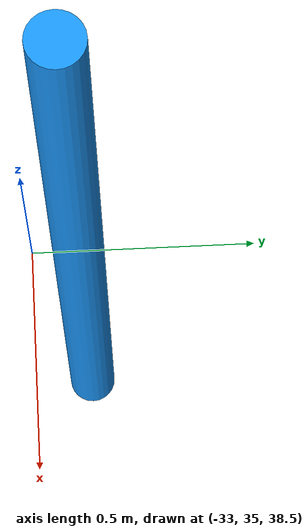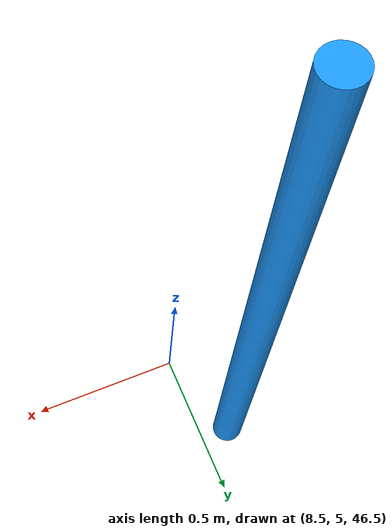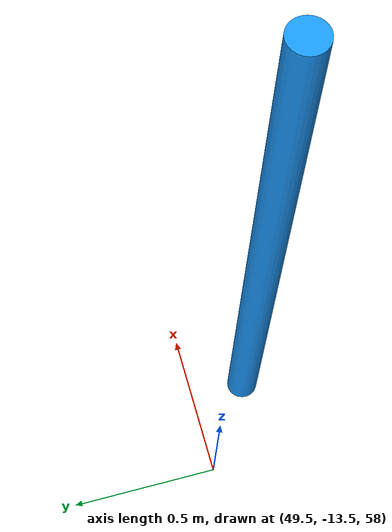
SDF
<sdf version="1.9">
 <world name="jezero_rimwest_rocks_k05_full">
  <physics name="1ms" type="ignored">
   <max_step_size>0.001</max_step_size>
   <real_time_factor>1</real_time_factor>
  </physics>
  <gravity>0 0 -3.721</gravity>
  <plugin filename="gz-sim-physics-system" name="gz::sim::systems::Physics"/>
  <plugin filename="gz-sim-user-commands-system" name="gz::sim::systems::UserCommands"/>
  <plugin filename="gz-sim-scene-broadcaster-system" name="gz::sim::systems::SceneBroadcaster"/>
  <scene><ambient>0.5 0.4 0.35 1</ambient><background>0.85 0.65 0.50 1</background><grid>false</grid></scene>
  <light type="directional" name="sun">
   <pose>0 0 100 0 0 0</pose>
   <diffuse>0.9 0.85 0.8 1</diffuse>
   <direction>-0.5 0.3 -0.8</direction>
  </light>
  <model name="waypoint_sol1431">
   <static>true</static>
   <pose>49.73 -13.66 59.17 0 0 0</pose>
   <link name="link">
    <visual name="v">
     <geometry><cylinder><radius>0.05</radius><length>2.0</length></cylinder></geometry>
     <material><ambient>0.1 0.6 1 1</ambient><diffuse>0.1 0.6 1 1</diffuse></material>
    </visual>
   </link>
  </model>
  <model name="waypoint_sol1435">
   <static>true</static>
   <pose>8.4 5.3 47.49 0 0 0</pose>
   <link name="link">
    <visual name="v">
     <geometry><cylinder><radius>0.05</radius><length>2.0</length></cylinder></geometry>
     <material><ambient>0.1 0.6 1 1</ambient><diffuse>0.1 0.6 1 1</diffuse></material>
    </visual>
   </link>
  </model>
  <model name="waypoint_sol1451">
   <static>true</static>
   <pose>-32.76 35.12 39.27 0 0 0</pose>
   <link name="link">
    <visual name="v">
     <geometry><cylinder><radius>0.05</radius><length>2.0</length></cylinder></geometry>
     <material><ambient>0.1 0.6 1 1</ambient><diffuse>0.1 0.6 1 1</diffuse></material>
    </visual>
   </link>
  </model>
  <model name="waypoint_sol1468">
   <static>true</static>
   <pose>0.55 -25.95 45.07 0 0 0</pose>
   <link name="link">
    <visual name="v">
     <geometry><cylinder><radius>0.05</radius><length>2.0</length></cylinder></geometry>
     <material><ambient>0.1 0.6 1 1</ambient><diffuse>0.1 0.6 1 1</diffuse></material>
    </visual>
   </link>
  </model>
  <model name="waypoint_sol1470">
   <static>true</static>
   <pose>-49.35 -44.61 31.57 0 0 0</pose>
   <link name="link">
    <visual name="v">
     <geometry><cylinder><radius>0.05</radius><length>2.0</length></cylinder></geometry>
     <material><ambient>0.1 0.6 1 1</ambient><diffuse>0.1 0.6 1 1</diffuse></material>
    </visual>
   </link>
  </model>
 </world>
</sdf>
